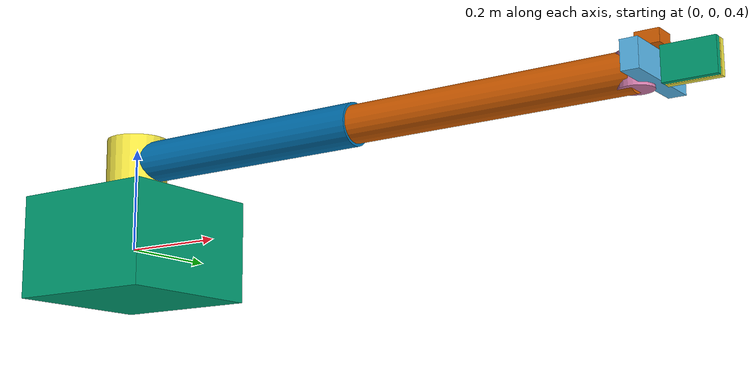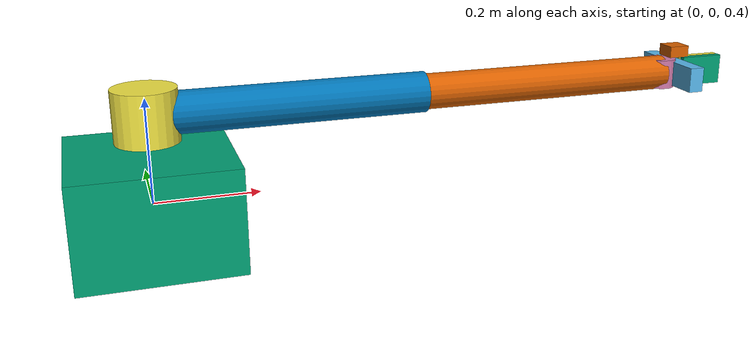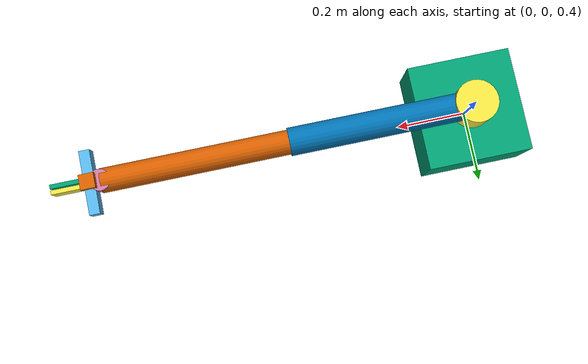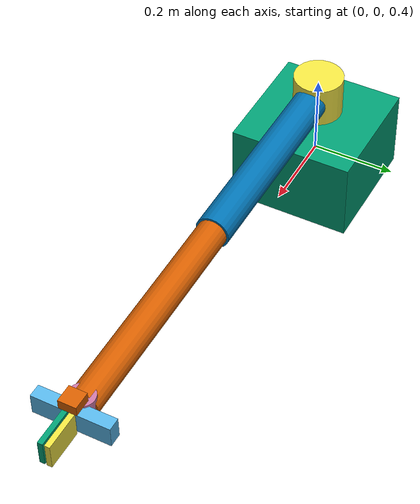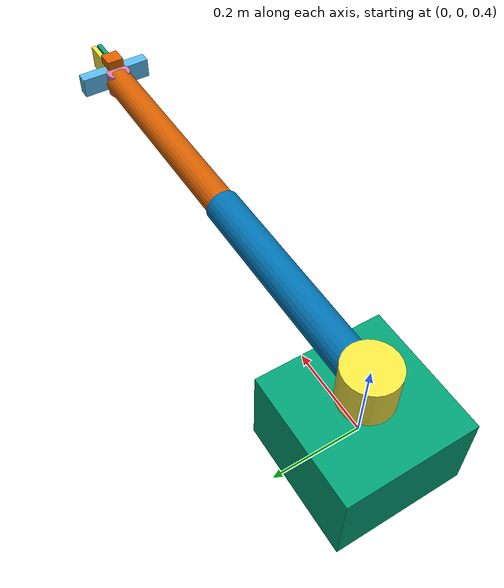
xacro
<?xml version="1.0"?>
<robot name="library_bot" xmlns:xacro="http://www.ros.org/wiki/xacro">
  <xacro:include filename="$(find library_bot_description)/urdf/d405_camera.xacro"/>

  <link name="base_footprint"/>
  <link name="world"/>
  <joint name="world_to_base_footprint" type="fixed">
    <parent link="world"/>
    <child link="base_footprint"/>
  </joint>
  <link name="base_link">
    <inertial>
      <mass value="5.0"/>
      <origin xyz="0 0 0"/>
      <inertia ixx="0.05" ixy="0" ixz="0" iyy="0.05" iyz="0" izz="0.05"/>
    </inertial>
    <visual>
      <origin xyz="0 0 0" rpy="0 0 0"/>
      <geometry><box size="0.3 0.3 0.2"/></geometry>
    </visual>
    <collision>
      <origin xyz="0 0 0" rpy="0 0 0"/>
      <geometry><box size="0.3 0.3 0.2"/></geometry>
    </collision>
  </link>
  <joint name="base_joint" type="fixed">
    <parent link="base_footprint"/>
    <child link="base_link"/>
    <origin xyz="0 0 0.40" rpy="0 0 0"/>
  </joint>

  <link name="link1">
    <inertial>
      <mass value="1.5"/>
      <origin xyz="0 0 0"/>
      <inertia ixx="0.01" ixy="0" ixz="0" iyy="0.01" iyz="0" izz="0.01"/>
    </inertial>
    <visual>
      <geometry><cylinder radius="0.06" length="0.1"/></geometry>
    </visual>
    <collision>
      <geometry><cylinder radius="0.06" length="0.1"/></geometry>
    </collision>
  </link>
  <joint name="joint1_waist" type="revolute">
    <parent link="base_link"/>
    <child link="link1"/>
    <origin xyz="0 0 0.17" rpy="0 0 0"/>
    <axis xyz="0 0 1"/>
    <limit lower="-3.14" upper="3.14" effort="60" velocity="1.0"/>
  </joint>

  <link name="link2">
    <inertial>
      <mass value="2.0"/>
      <origin xyz="0.265 0 0"/>
      <inertia ixx="0.02" ixy="0" ixz="0" iyy="0.02" iyz="0" izz="0.005"/>
    </inertial>
    <visual>
      <origin xyz="0.265 0 0" rpy="0 1.5708 0"/>
      <geometry><cylinder radius="0.04" length="0.53"/></geometry>
    </visual>
    <collision>
      <origin xyz="0.265 0 0" rpy="0 1.5708 0"/>
      <geometry><cylinder radius="0.04" length="0.53"/></geometry>
    </collision>
  </link>
  <joint name="joint2_shoulder" type="revolute">
    <parent link="link1"/>
    <child link="link2"/>
    <origin xyz="0 0 0" rpy="-1.5708 0 0"/>
    <axis xyz="0 0 1"/>
    <limit lower="-1.57" upper="1.57" effort="80" velocity="1.0"/>
  </joint>

  <link name="link3">
    <inertial>
      <mass value="1.5"/>
      <origin xyz="0.265 0 0"/>
      <inertia ixx="0.015" ixy="0" ixz="0" iyy="0.015" iyz="0" izz="0.004"/>
    </inertial>
    <visual>
      <origin xyz="0.265 0 0" rpy="0 1.5708 0"/>
      <geometry><cylinder radius="0.035" length="0.53"/></geometry>
    </visual>
    <collision>
      <origin xyz="0.265 0 0" rpy="0 1.5708 0"/>
      <geometry><cylinder radius="0.035" length="0.53"/></geometry>
    </collision>
  </link>
  <joint name="joint3_elbow" type="revolute">
    <parent link="link2"/>
    <child link="link3"/>
    <origin xyz="0.53 0 0" rpy="0 0 0"/>
    <axis xyz="0 0 1"/>
    <limit lower="-2.094" upper="2.094" effort="40" velocity="1.0"/>
  </joint>

  <link name="link4">
    <inertial>
      <mass value="0.4"/>
      <origin xyz="0 0 0"/>
      <inertia ixx="0.002" ixy="0" ixz="0" iyy="0.002" iyz="0" izz="0.002"/>
    </inertial>
    <visual><geometry><cylinder radius="0.03" length="0.06"/></geometry></visual>
    <collision><geometry><cylinder radius="0.03" length="0.06"/></geometry></collision>
  </link>
  <joint name="joint4_wrist1" type="revolute">
    <parent link="link3"/>
    <child link="link4"/>
    <origin xyz="0.53 0 0" rpy="-1.5708 0 0"/>
    <axis xyz="0 0 1"/>
    <limit lower="-3.14" upper="3.14" effort="15" velocity="1.5"/>
  </joint>

  <link name="link5">
    <inertial>
      <mass value="0.3"/>
      <origin xyz="0 0 0"/>
      <inertia ixx="0.0015" ixy="0" ixz="0" iyy="0.0015" iyz="0" izz="0.0015"/>
    </inertial>
    <visual><geometry><cylinder radius="0.025" length="0.05"/></geometry></visual>
    <collision><geometry><cylinder radius="0.025" length="0.05"/></geometry></collision>
  </link>
  <joint name="joint5_wrist2" type="revolute">
    <parent link="link4"/>
    <child link="link5"/>
    <origin xyz="0 0 0" rpy="1.5708 0 0"/>
    <axis xyz="0 0 1"/>
    <limit lower="-2.09" upper="2.09" effort="15" velocity="1.5"/>
  </joint>

  <link name="ee_link">
    <inertial>
      <mass value="0.2"/>
      <origin xyz="0 0 0"/>
      <inertia ixx="0.001" ixy="0" ixz="0" iyy="0.001" iyz="0" izz="0.001"/>
    </inertial>
    <visual><geometry><cylinder radius="0.02" length="0.04"/></geometry></visual>
    <collision><geometry><cylinder radius="0.02" length="0.04"/></geometry></collision>
  </link>
  <joint name="joint6_wrist3" type="revolute">
    <parent link="link5"/>
    <child link="ee_link"/>
    <origin xyz="0 0 0" rpy="-1.5708 0 0"/>
    <axis xyz="0 0 1"/>
    <limit lower="-3.14" upper="3.14" effort="15" velocity="1.5"/>
  </joint>
  <xacro:include filename="$(find library_bot_description)/urdf/gripper.xacro"/>
  <xacro:parallel_gripper parent="ee_link"/>
  <xacro:d405_camera parent="ee_link" xyz="0.03 0 -0.045" rpy="0 0 0"/>
</robot>

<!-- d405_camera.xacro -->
<robot xmlns:xacro="http://www.ros.org/wiki/xacro">

  <xacro:property name="d405_hfov" value="1.51844"/>  <!-- 87 deg in radians -->
  <xacro:property name="d405_width" value="640"/>
  <xacro:property name="d405_height" value="480"/>
  <xacro:property name="d405_update_rate" value="15"/>  <!-- Hz; raise once perf is confirmed -->
  <xacro:property name="d405_near" value="0.07"/>       <!-- TEMP: widened for debugging, was 0.07 -->
  <xacro:property name="d405_far" value="0.5"/>          <!-- TEMP: widened for debugging, was 0.5 -->
  <xacro:property name="M_PI" value="3.14159265359"/>

  <xacro:macro name="d405_camera" params="parent xyz:='0 0 0' rpy:='0 0 0'">

    <link name="d405_link">
      <inertial>
        <mass value="0.06"/>  <!-- real D405 weighs 60g -->
        <origin xyz="0 0 0"/>
        <inertia ixx="1e-6" ixy="0" ixz="0" iyy="1e-6" iyz="0" izz="1e-6"/>
      </inertial>
      <visual>
        <origin xyz="0 0 0" rpy="0 0 0"/>
        <geometry><box size="0.042 0.042 0.023"/></geometry>  <!-- real D405 dimensions -->
      </visual>
    </link>

    <joint name="d405_joint" type="fixed">
      <parent link="${parent}"/>
      <child link="d405_link"/>
      <origin xyz="${xyz}" rpy="${rpy}"/>
    </joint>

    <!-- REP-103 optical frame convention: z forward, x right, y down -->
    <link name="d405_optical_frame"/>
    <joint name="d405_optical_joint" type="fixed">
      <parent link="d405_link"/>
      <child link="d405_optical_frame"/>
      <origin xyz="0 0 0" rpy="${-M_PI/2} 0 ${-M_PI/2}"/>
    </joint>

    <gazebo reference="d405_link">
      <sensor type="depth" name="d405_sensor">
        <update_rate>${d405_update_rate}</update_rate>
        <camera name="d405">
          <horizontal_fov>${d405_hfov}</horizontal_fov>
          <image>
            <width>${d405_width}</width>
            <height>${d405_height}</height>
            <format>R8G8B8</format>
          </image>
          <clip>
            <near>${d405_near}</near>
            <far>${d405_far}</far>
          </clip>
          <noise>
            <type>gaussian</type>
            <mean>0.0</mean>
            <stddev>0.005</stddev>  <!-- tighter than the old stereo noise, matching D405's higher precision -->
          </noise>
        </camera>
        <plugin name="d405_controller" filename="libgazebo_ros_camera.so">
          <min_depth>0.05</min_depth>
          <max_depth>0.6</max_depth>
          <ros>
            <namespace>d405</namespace>
          </ros>
          <camera_name>d405</camera_name>
          <frame_name>d405_optical_frame</frame_name>
        </plugin>
      </sensor>
    </gazebo>

  </xacro:macro>

</robot>

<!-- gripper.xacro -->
<robot xmlns:xacro="http://www.ros.org/wiki/xacro">
  <!-- Parallel-jaw gripper. Fingers extend along +X of the parent, open along +/-Y.
       Finger joint 0 = closed, 0.065 = fully open (each side). -->

  <xacro:macro name="finger" params="side y axis">
    <link name="finger_${side}">
      <inertial>
        <mass value="0.05"/>
        <origin xyz="0 0 0"/>
        <inertia ixx="1.56e-5" ixy="0" ixz="0" iyy="4.875e-5" iyz="0" izz="3.43e-5"/>
      </inertial>
      <visual><geometry><box size="0.09 0.012 0.06"/></geometry></visual>
      <collision><geometry><box size="0.09 0.012 0.06"/></geometry></collision>
    </link>
    <joint name="finger_${side}_joint" type="prismatic">
      <parent link="gripper_palm"/>
      <child link="finger_${side}"/>
      <origin xyz="0.062 ${y} 0" rpy="0 0 0"/>
      <axis xyz="0 ${axis} 0"/>
      <limit lower="0.0" upper="0.065" effort="40" velocity="0.1"/>
    </joint>
    <gazebo reference="finger_${side}">
      <mu1>3.0</mu1>
      <mu2>3.0</mu2>
      <kp>1000000.0</kp>
      <kd>100.0</kd>
      <minDepth>0.001</minDepth>
      <maxVel>0.1</maxVel>
    </gazebo>
  </xacro:macro>

  <xacro:macro name="parallel_gripper" params="parent">
    <link name="gripper_palm">
      <inertial>
        <mass value="0.4"/>
        <origin xyz="0 0 0"/>
        <inertia ixx="1.163e-3" ixy="0" ixz="0" iyy="1.133e-4" iyz="0" izz="1.11e-3"/>
      </inertial>
      <visual><geometry><box size="0.03 0.18 0.05"/></geometry></visual>
      <collision><geometry><box size="0.03 0.18 0.05"/></geometry></collision>
    </link>
    <joint name="gripper_palm_joint" type="fixed">
      <parent link="${parent}"/>
      <child link="gripper_palm"/>
      <origin xyz="0.03 0 0" rpy="0 0 0"/>
    </joint>

    <xacro:finger side="left"  y="0.008"  axis="1"/>
    <xacro:finger side="right" y="-0.008" axis="-1"/>

    <!-- Tool centre point: middle of the finger pads (0.092 m ahead of ee_link) -->
    <link name="grasp_tcp"/>
    <joint name="grasp_tcp_joint" type="fixed">
      <parent link="gripper_palm"/>
      <child link="grasp_tcp"/>
      <origin xyz="0.062 0 0" rpy="0 0 0"/>
    </joint>
  </xacro:macro>
</robot>
